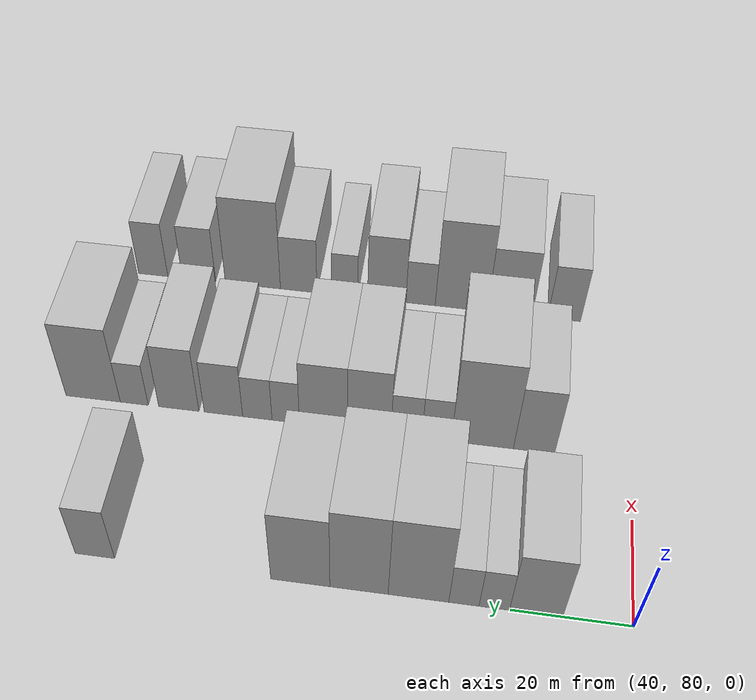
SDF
<sdf version="1.6">
 <world name="default">
  <model name="building_51">
   <static>1</static>
   <pose>50.0000 95.8063 0 0.000000 0.000000 0.000000</pose>
   <link name="link">
    <pose>0 0 9.00 0 0 0</pose>
    <collision name="collision"><geometry><box><size>20.0000 8.7349 18.0000</size></box></geometry></collision>
    <visual name="visual">
     <cast_shadows>0</cast_shadows>
     <geometry><box><size>20.0000 8.7349 18.0000</size></box></geometry>
     <material>
      <script>
       <uri>model://HANNAS_wall/materials/scripts</uri>
       <uri>model://HANNAS_wall/materials/textures</uri>
       <name>vrc/HANNAS_wall</name>
      </script>
     </material>
    </visual>
   </link>
  </model>
  <model name="building_52">
   <static>1</static>
   <pose>50.0000 102.6797 0 0.000000 0.000000 0.000000</pose>
   <link name="link">
    <pose>0 0 6.00 0 0 0</pose>
    <collision name="collision"><geometry><box><size>20.0000 5.0120 12.0000</size></box></geometry></collision>
    <visual name="visual">
     <cast_shadows>0</cast_shadows>
     <geometry><box><size>20.0000 5.0120 12.0000</size></box></geometry>
     <material>
      <script>
       <uri>model://HANNAS_wall/materials/scripts</uri>
       <uri>model://HANNAS_wall/materials/textures</uri>
       <name>vrc/HANNAS_wall</name>
      </script>
     </material>
    </visual>
   </link>
  </model>
  <model name="building_53">
   <static>1</static>
   <pose>50.0000 107.6920 0 0.000000 0.000000 0.000000</pose>
   <link name="link">
    <pose>0 0 6.00 0 0 0</pose>
    <collision name="collision"><geometry><box><size>20.0000 5.0125 12.0000</size></box></geometry></collision>
    <visual name="visual">
     <cast_shadows>0</cast_shadows>
     <geometry><box><size>20.0000 5.0125 12.0000</size></box></geometry>
     <material>
      <script>
       <uri>model://HANNAS_wall/materials/scripts</uri>
       <uri>model://HANNAS_wall/materials/textures</uri>
       <name>vrc/HANNAS_wall</name>
      </script>
     </material>
    </visual>
   </link>
  </model>
  <model name="building_54">
   <static>1</static>
   <pose>50.0000 115.2535 0 0.000000 0.000000 0.000000</pose>
   <link name="link">
    <pose>0 0 12.00 0 0 0</pose>
    <collision name="collision"><geometry><box><size>20.0000 10.1106 24.0000</size></box></geometry></collision>
    <visual name="visual">
     <cast_shadows>0</cast_shadows>
     <geometry><box><size>20.0000 10.1106 24.0000</size></box></geometry>
     <material>
      <script>
       <uri>model://HANNAS_wall/materials/scripts</uri>
       <uri>model://HANNAS_wall/materials/textures</uri>
       <name>vrc/HANNAS_wall</name>
      </script>
     </material>
    </visual>
   </link>
  </model>
  <model name="building_55">
   <static>1</static>
   <pose>50.0000 125.1955 0 0.000000 0.000000 0.000000</pose>
   <link name="link">
    <pose>0 0 12.00 0 0 0</pose>
    <collision name="collision"><geometry><box><size>20.0000 9.7735 24.0000</size></box></geometry></collision>
    <visual name="visual">
     <cast_shadows>0</cast_shadows>
     <geometry><box><size>20.0000 9.7735 24.0000</size></box></geometry>
     <material>
      <script>
       <uri>model://HANNAS_wall/materials/scripts</uri>
       <uri>model://HANNAS_wall/materials/textures</uri>
       <name>vrc/HANNAS_wall</name>
      </script>
     </material>
    </visual>
   </link>
  </model>
  <model name="building_56">
   <static>1</static>
   <pose>50.0000 135.0868 0 0.000000 0.000000 0.000000</pose>
   <link name="link">
    <pose>0 0 10.50 0 0 0</pose>
    <collision name="collision"><geometry><box><size>20.0000 10.0090 21.0000</size></box></geometry></collision>
    <visual name="visual">
     <cast_shadows>0</cast_shadows>
     <geometry><box><size>20.0000 10.0090 21.0000</size></box></geometry>
     <material>
      <script>
       <uri>model://HANNAS_wall/materials/scripts</uri>
       <uri>model://HANNAS_wall/materials/textures</uri>
       <name>vrc/HANNAS_wall</name>
      </script>
     </material>
    </visual>
   </link>
  </model>
  <model name="building_57">
   <static>1</static>
   <pose>50.0000 170.4384 0 0.000000 0.000000 0.000000</pose>
   <link name="link">
    <pose>0 0 7.50 0 0 0</pose>
    <collision name="collision"><geometry><box><size>20.0000 6.8981 15.0000</size></box></geometry></collision>
    <visual name="visual">
     <cast_shadows>0</cast_shadows>
     <geometry><box><size>20.0000 6.8981 15.0000</size></box></geometry>
     <material>
      <script>
       <uri>model://HANNAS_wall/materials/scripts</uri>
       <uri>model://HANNAS_wall/materials/textures</uri>
       <name>vrc/HANNAS_wall</name>
      </script>
     </material>
    </visual>
   </link>
  </model>
  <model name="building_124">
   <static>1</static>
   <pose>82.0000 97.5061 0 0.000000 0.000000 0.000000</pose>
   <link name="link">
    <pose>0 0 9.00 0 0 0</pose>
    <collision name="collision"><geometry><box><size>20.0000 7.4522 18.0000</size></box></geometry></collision>
    <visual name="visual">
     <cast_shadows>0</cast_shadows>
     <geometry><box><size>20.0000 7.4522 18.0000</size></box></geometry>
     <material>
      <script>
       <uri>model://HANNAS_wall/materials/scripts</uri>
       <uri>model://HANNAS_wall/materials/textures</uri>
       <name>vrc/HANNAS_wall</name>
      </script>
     </material>
    </visual>
   </link>
  </model>
  <model name="building_125">
   <static>1</static>
   <pose>82.0000 106.8873 0 0.000000 0.000000 0.000000</pose>
   <link name="link">
    <pose>0 0 12.00 0 0 0</pose>
    <collision name="collision"><geometry><box><size>20.0000 11.3100 24.0000</size></box></geometry></collision>
    <visual name="visual">
     <cast_shadows>0</cast_shadows>
     <geometry><box><size>20.0000 11.3100 24.0000</size></box></geometry>
     <material>
      <script>
       <uri>model://HANNAS_wall/materials/scripts</uri>
       <uri>model://HANNAS_wall/materials/textures</uri>
       <name>vrc/HANNAS_wall</name>
      </script>
     </material>
    </visual>
   </link>
  </model>
  <model name="building_126">
   <static>1</static>
   <pose>82.0000 115.2174 0 0.000000 0.000000 0.000000</pose>
   <link name="link">
    <pose>0 0 6.00 0 0 0</pose>
    <collision name="collision"><geometry><box><size>20.0000 5.3503 12.0000</size></box></geometry></collision>
    <visual name="visual">
     <cast_shadows>0</cast_shadows>
     <geometry><box><size>20.0000 5.3503 12.0000</size></box></geometry>
     <material>
      <script>
       <uri>model://HANNAS_wall/materials/scripts</uri>
       <uri>model://HANNAS_wall/materials/textures</uri>
       <name>vrc/HANNAS_wall</name>
      </script>
     </material>
    </visual>
   </link>
  </model>
  <model name="building_127">
   <static>1</static>
   <pose>82.0000 120.7360 0 0.000000 0.000000 0.000000</pose>
   <link name="link">
    <pose>0 0 6.00 0 0 0</pose>
    <collision name="collision"><geometry><box><size>20.0000 5.6870 12.0000</size></box></geometry></collision>
    <visual name="visual">
     <cast_shadows>0</cast_shadows>
     <geometry><box><size>20.0000 5.6870 12.0000</size></box></geometry>
     <material>
      <script>
       <uri>model://HANNAS_wall/materials/scripts</uri>
       <uri>model://HANNAS_wall/materials/textures</uri>
       <name>vrc/HANNAS_wall</name>
      </script>
     </material>
    </visual>
   </link>
  </model>
  <model name="building_128">
   <static>1</static>
   <pose>82.0000 127.6062 0 0.000000 0.000000 0.000000</pose>
   <link name="link">
    <pose>0 0 9.00 0 0 0</pose>
    <collision name="collision"><geometry><box><size>20.0000 8.0534 18.0000</size></box></geometry></collision>
    <visual name="visual">
     <cast_shadows>0</cast_shadows>
     <geometry><box><size>20.0000 8.0534 18.0000</size></box></geometry>
     <material>
      <script>
       <uri>model://HANNAS_wall/materials/scripts</uri>
       <uri>model://HANNAS_wall/materials/textures</uri>
       <name>vrc/HANNAS_wall</name>
      </script>
     </material>
    </visual>
   </link>
  </model>
  <model name="building_129">
   <static>1</static>
   <pose>82.0000 136.0837 0 0.000000 0.000000 0.000000</pose>
   <link name="link">
    <pose>0 0 9.00 0 0 0</pose>
    <collision name="collision"><geometry><box><size>20.0000 8.9015 18.0000</size></box></geometry></collision>
    <visual name="visual">
     <cast_shadows>0</cast_shadows>
     <geometry><box><size>20.0000 8.9015 18.0000</size></box></geometry>
     <material>
      <script>
       <uri>model://HANNAS_wall/materials/scripts</uri>
       <uri>model://HANNAS_wall/materials/textures</uri>
       <name>vrc/HANNAS_wall</name>
      </script>
     </material>
    </visual>
   </link>
  </model>
  <model name="building_130">
   <static>1</static>
   <pose>82.0000 143.0996 0 0.000000 0.000000 0.000000</pose>
   <link name="link">
    <pose>0 0 6.00 0 0 0</pose>
    <collision name="collision"><geometry><box><size>20.0000 5.1302 12.0000</size></box></geometry></collision>
    <visual name="visual">
     <cast_shadows>0</cast_shadows>
     <geometry><box><size>20.0000 5.1302 12.0000</size></box></geometry>
     <material>
      <script>
       <uri>model://HANNAS_wall/materials/scripts</uri>
       <uri>model://HANNAS_wall/materials/textures</uri>
       <name>vrc/HANNAS_wall</name>
      </script>
     </material>
    </visual>
   </link>
  </model>
  <model name="building_131">
   <static>1</static>
   <pose>82.0000 148.4214 0 0.000000 0.000000 0.000000</pose>
   <link name="link">
    <pose>0 0 6.00 0 0 0</pose>
    <collision name="collision"><geometry><box><size>20.0000 5.5135 12.0000</size></box></geometry></collision>
    <visual name="visual">
     <cast_shadows>0</cast_shadows>
     <geometry><box><size>20.0000 5.5135 12.0000</size></box></geometry>
     <material>
      <script>
       <uri>model://HANNAS_wall/materials/scripts</uri>
       <uri>model://HANNAS_wall/materials/textures</uri>
       <name>vrc/HANNAS_wall</name>
      </script>
     </material>
    </visual>
   </link>
  </model>
  <model name="building_132">
   <static>1</static>
   <pose>82.0000 154.8139 0 0.000000 0.000000 0.000000</pose>
   <link name="link">
    <pose>0 0 7.50 0 0 0</pose>
    <collision name="collision"><geometry><box><size>20.0000 7.2716 15.0000</size></box></geometry></collision>
    <visual name="visual">
     <cast_shadows>0</cast_shadows>
     <geometry><box><size>20.0000 7.2716 15.0000</size></box></geometry>
     <material>
      <script>
       <uri>model://HANNAS_wall/materials/scripts</uri>
       <uri>model://HANNAS_wall/materials/textures</uri>
       <name>vrc/HANNAS_wall</name>
      </script>
     </material>
    </visual>
   </link>
  </model>
  <model name="building_133">
   <static>1</static>
   <pose>82.0000 163.2743 0 0.000000 0.000000 0.000000</pose>
   <link name="link">
    <pose>0 0 9.00 0 0 0</pose>
    <collision name="collision"><geometry><box><size>20.0000 7.6492 18.0000</size></box></geometry></collision>
    <visual name="visual">
     <cast_shadows>0</cast_shadows>
     <geometry><box><size>20.0000 7.6492 18.0000</size></box></geometry>
     <material>
      <script>
       <uri>model://HANNAS_wall/materials/scripts</uri>
       <uri>model://HANNAS_wall/materials/textures</uri>
       <name>vrc/HANNAS_wall</name>
      </script>
     </material>
    </visual>
   </link>
  </model>
  <model name="building_134">
   <static>1</static>
   <pose>82.0000 171.7755 0 0.000000 0.000000 0.000000</pose>
   <link name="link">
    <pose>0 0 6.00 0 0 0</pose>
    <collision name="collision"><geometry><box><size>20.0000 5.3531 12.0000</size></box></geometry></collision>
    <visual name="visual">
     <cast_shadows>0</cast_shadows>
     <geometry><box><size>20.0000 5.3531 12.0000</size></box></geometry>
     <material>
      <script>
       <uri>model://HANNAS_wall/materials/scripts</uri>
       <uri>model://HANNAS_wall/materials/textures</uri>
       <name>vrc/HANNAS_wall</name>
      </script>
     </material>
    </visual>
   </link>
  </model>
  <model name="building_135">
   <static>1</static>
   <pose>82.0000 179.6747 0 0.000000 0.000000 0.000000</pose>
   <link name="link">
    <pose>0 0 10.50 0 0 0</pose>
    <collision name="collision"><geometry><box><size>20.0000 10.4454 21.0000</size></box></geometry></collision>
    <visual name="visual">
     <cast_shadows>0</cast_shadows>
     <geometry><box><size>20.0000 10.4454 21.0000</size></box></geometry>
     <material>
      <script>
       <uri>model://HANNAS_wall/materials/scripts</uri>
       <uri>model://HANNAS_wall/materials/textures</uri>
       <name>vrc/HANNAS_wall</name>
      </script>
     </material>
    </visual>
   </link>
  </model>
  <model name="building_204">
   <static>1</static>
   <pose>114.0000 92.9482 0 0.000000 0.000000 0.000000</pose>
   <link name="link">
    <pose>0 0 7.50 0 0 0</pose>
    <collision name="collision"><geometry><box><size>20.0000 6.4940 15.0000</size></box></geometry></collision>
    <visual name="visual">
     <cast_shadows>0</cast_shadows>
     <geometry><box><size>20.0000 6.4940 15.0000</size></box></geometry>
     <material>
      <script>
       <uri>model://HANNAS_wall/materials/scripts</uri>
       <uri>model://HANNAS_wall/materials/textures</uri>
       <name>vrc/HANNAS_wall</name>
      </script>
     </material>
    </visual>
   </link>
  </model>
  <model name="building_205">
   <static>1</static>
   <pose>114.0000 103.6363 0 0.000000 0.000000 0.000000</pose>
   <link name="link">
    <pose>0 0 9.00 0 0 0</pose>
    <collision name="collision"><geometry><box><size>20.0000 8.8823 18.0000</size></box></geometry></collision>
    <visual name="visual">
     <cast_shadows>0</cast_shadows>
     <geometry><box><size>20.0000 8.8823 18.0000</size></box></geometry>
     <material>
      <script>
       <uri>model://HANNAS_wall/materials/scripts</uri>
       <uri>model://HANNAS_wall/materials/textures</uri>
       <name>vrc/HANNAS_wall</name>
      </script>
     </material>
    </visual>
   </link>
  </model>
  <model name="building_206">
   <static>1</static>
   <pose>114.0000 113.2676 0 0.000000 0.000000 0.000000</pose>
   <link name="link">
    <pose>0 0 12.00 0 0 0</pose>
    <collision name="collision"><geometry><box><size>20.0000 10.3803 24.0000</size></box></geometry></collision>
    <visual name="visual">
     <cast_shadows>0</cast_shadows>
     <geometry><box><size>20.0000 10.3803 24.0000</size></box></geometry>
     <material>
      <script>
       <uri>model://HANNAS_wall/materials/scripts</uri>
       <uri>model://HANNAS_wall/materials/textures</uri>
       <name>vrc/HANNAS_wall</name>
      </script>
     </material>
    </visual>
   </link>
  </model>
  <model name="building_207">
   <static>1</static>
   <pose>114.0000 121.3984 0 0.000000 0.000000 0.000000</pose>
   <link name="link">
    <pose>0 0 6.00 0 0 0</pose>
    <collision name="collision"><geometry><box><size>20.0000 5.8814 12.0000</size></box></geometry></collision>
    <visual name="visual">
     <cast_shadows>0</cast_shadows>
     <geometry><box><size>20.0000 5.8814 12.0000</size></box></geometry>
     <material>
      <script>
       <uri>model://HANNAS_wall/materials/scripts</uri>
       <uri>model://HANNAS_wall/materials/textures</uri>
       <name>vrc/HANNAS_wall</name>
      </script>
     </material>
    </visual>
   </link>
  </model>
  <model name="building_208">
   <static>1</static>
   <pose>114.0000 128.1922 0 0.000000 0.000000 0.000000</pose>
   <link name="link">
    <pose>0 0 9.00 0 0 0</pose>
    <collision name="collision"><geometry><box><size>20.0000 7.7062 18.0000</size></box></geometry></collision>
    <visual name="visual">
     <cast_shadows>0</cast_shadows>
     <geometry><box><size>20.0000 7.7062 18.0000</size></box></geometry>
     <material>
      <script>
       <uri>model://HANNAS_wall/materials/scripts</uri>
       <uri>model://HANNAS_wall/materials/textures</uri>
       <name>vrc/HANNAS_wall</name>
      </script>
     </material>
    </visual>
   </link>
  </model>
  <model name="building_209">
   <static>1</static>
   <pose>114.0000 136.6680 0 0.000000 0.000000 0.000000</pose>
   <link name="link">
    <pose>0 0 6.00 0 0 0</pose>
    <collision name="collision"><geometry><box><size>20.0000 5.2455 12.0000</size></box></geometry></collision>
    <visual name="visual">
     <cast_shadows>0</cast_shadows>
     <geometry><box><size>20.0000 5.2455 12.0000</size></box></geometry>
     <material>
      <script>
       <uri>model://HANNAS_wall/materials/scripts</uri>
       <uri>model://HANNAS_wall/materials/textures</uri>
       <name>vrc/HANNAS_wall</name>
      </script>
     </material>
    </visual>
   </link>
  </model>
  <model name="building_210">
   <static>1</static>
   <pose>114.0000 146.0125 0 0.000000 0.000000 0.000000</pose>
   <link name="link">
    <pose>0 0 7.50 0 0 0</pose>
    <collision name="collision"><geometry><box><size>20.0000 7.4434 15.0000</size></box></geometry></collision>
    <visual name="visual">
     <cast_shadows>0</cast_shadows>
     <geometry><box><size>20.0000 7.4434 15.0000</size></box></geometry>
     <material>
      <script>
       <uri>model://HANNAS_wall/materials/scripts</uri>
       <uri>model://HANNAS_wall/materials/textures</uri>
       <name>vrc/HANNAS_wall</name>
      </script>
     </material>
    </visual>
   </link>
  </model>
  <model name="building_211">
   <static>1</static>
   <pose>114.0000 155.3903 0 0.000000 0.000000 0.000000</pose>
   <link name="link">
    <pose>0 0 12.00 0 0 0</pose>
    <collision name="collision"><geometry><box><size>20.0000 11.3121 24.0000</size></box></geometry></collision>
    <visual name="visual">
     <cast_shadows>0</cast_shadows>
     <geometry><box><size>20.0000 11.3121 24.0000</size></box></geometry>
     <material>
      <script>
       <uri>model://HANNAS_wall/materials/scripts</uri>
       <uri>model://HANNAS_wall/materials/textures</uri>
       <name>vrc/HANNAS_wall</name>
      </script>
     </material>
    </visual>
   </link>
  </model>
  <model name="building_212">
   <static>1</static>
   <pose>114.0000 166.5104 0 0.000000 0.000000 0.000000</pose>
   <link name="link">
    <pose>0 0 7.50 0 0 0</pose>
    <collision name="collision"><geometry><box><size>20.0000 6.9281 15.0000</size></box></geometry></collision>
    <visual name="visual">
     <cast_shadows>0</cast_shadows>
     <geometry><box><size>20.0000 6.9281 15.0000</size></box></geometry>
     <material>
      <script>
       <uri>model://HANNAS_wall/materials/scripts</uri>
       <uri>model://HANNAS_wall/materials/textures</uri>
       <name>vrc/HANNAS_wall</name>
      </script>
     </material>
    </visual>
   </link>
  </model>
  <model name="building_213">
   <static>1</static>
   <pose>114.0000 176.0063 0 0.000000 0.000000 0.000000</pose>
   <link name="link">
    <pose>0 0 7.50 0 0 0</pose>
    <collision name="collision"><geometry><box><size>20.0000 6.0639 15.0000</size></box></geometry></collision>
    <visual name="visual">
     <cast_shadows>0</cast_shadows>
     <geometry><box><size>20.0000 6.0639 15.0000</size></box></geometry>
     <material>
      <script>
       <uri>model://HANNAS_wall/materials/scripts</uri>
       <uri>model://HANNAS_wall/materials/textures</uri>
       <name>vrc/HANNAS_wall</name>
      </script>
     </material>
    </visual>
   </link>
  </model>
 </world>
</sdf>
